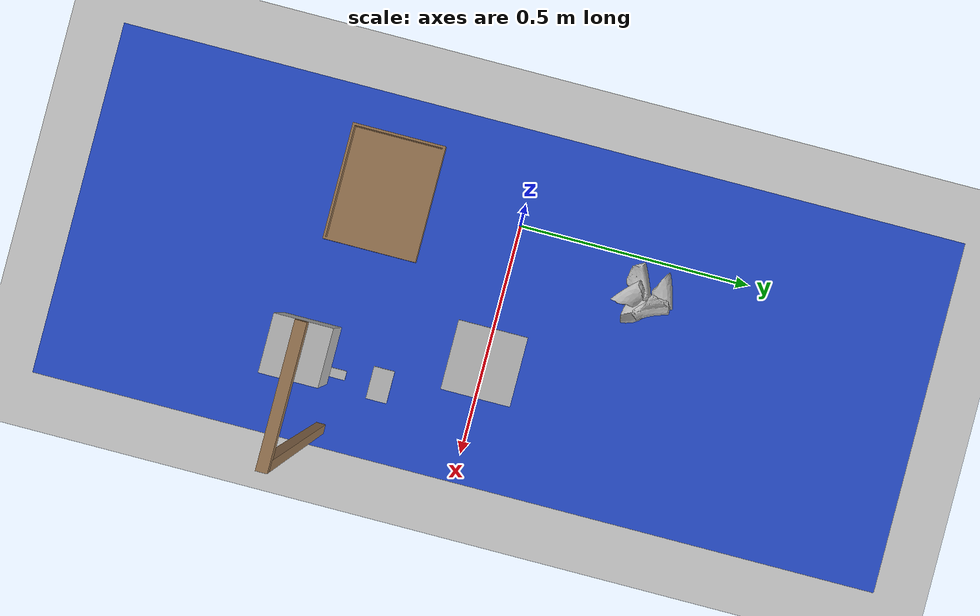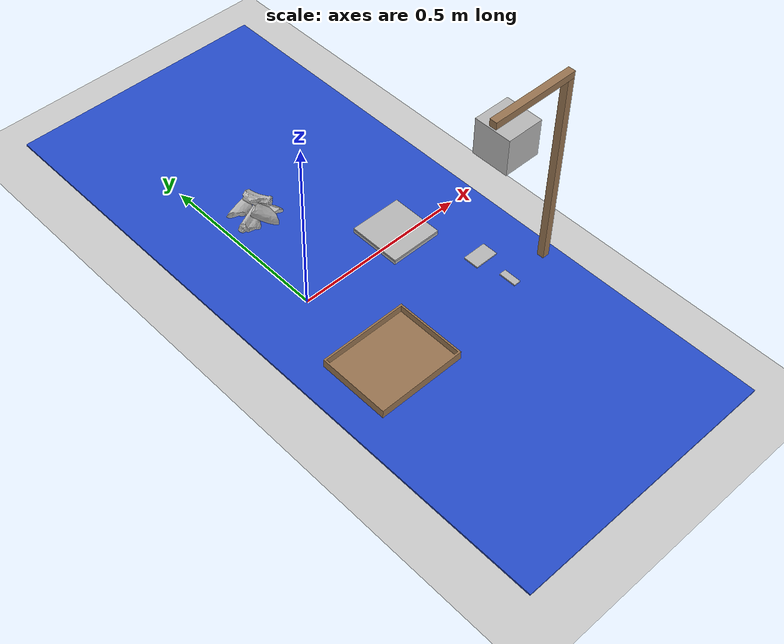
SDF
<sdf version="1.6">
 <world name="default">
  <light name="sun" type="directional">
   <cast_shadows>0</cast_shadows>
   <pose>0 0 10 0 -0 0</pose>
   <diffuse>0.8 0.8 0.8 1</diffuse>
   <specular>0.1 0.1 0.1 1</specular>
   <attenuation>
    <range>1000</range>
    <constant>0.9</constant>
    <linear>0.01</linear>
    <quadratic>0.001</quadratic>
   </attenuation>
   <direction>-0.5 0.5 -1</direction>
  </light>
  <model name="ground_plane">
   <static>1</static>
   <link name="link">
    <collision name="collision">
     <geometry><plane><normal>0 0 1</normal><size>100 100</size></plane></geometry>
     <surface><friction><ode><mu>100</mu><mu2>50</mu2></ode></friction></surface>
    </collision>
    <visual name="visual">
     <cast_shadows>0</cast_shadows>
     <geometry><plane><normal>0 0 1</normal><size>100 100</size></plane></geometry>
     <material>
      <script><uri>file://media/materials/scripts/gazebo.material</uri><name>Gazebo/Grey</name></script>
     </material>
    </visual>
   </link>
  </model>
  <gravity>0 0 -9.8</gravity>
  <magnetic_field>6e-06 2.3e-05 -4.2e-05</magnetic_field>
  <atmosphere type="adiabatic"/>
  <physics name="default_physics" default="0" type="ode">
   <max_step_size>0.001</max_step_size>
   <real_time_factor>1</real_time_factor>
   <real_time_update_rate>1000</real_time_update_rate>
  </physics>
  <scene><ambient>0.4 0.4 0.4 1</ambient><background>0.7 0.7 0.7 1</background><shadows>0</shadows></scene>
  <spherical_coordinates>
   <surface_model>EARTH_WGS84</surface_model>
   <latitude_deg>0</latitude_deg>
   <longitude_deg>0</longitude_deg>
   <elevation>0</elevation>
   <heading_deg>0</heading_deg>
  </spherical_coordinates>
  <model name="sherdmat">
   <pose>0.18 0 0.02 0 -0 0</pose>
   <static>1</static>
   <link name="mat_link">
    <pose>0 0 0.0025 0 -0 0</pose>
    <inertial>
     <mass>5</mass>
     <inertia><ixx>5</ixx><ixy>0</ixy><ixz>0</ixz><iyy>5</iyy><iyz>0</iyz><izz>5</izz></inertia>
    </inertial>
    <collision name="collision">
     <geometry><box><size>0.76 1.83 0.005</size></box></geometry>
     <surface>
      <friction>
       <torsional><coefficient>1</coefficient></torsional>
       <ode><mu>1</mu><mu2>1</mu2><fdir1>1 0 0</fdir1></ode>
      </friction>
     </surface>
    </collision>
    <visual name="visual">
     <material>
      <script><uri>file://media/materials/scripts/gazebo.material</uri><name>Gazebo/Blue</name></script>
     </material>
     <geometry><box><size>0.76 1.83 0.005</size></box></geometry>
    </visual>
   </link>
  </model>
  <model name="scale">
   <static>0</static>
   <link name="scale_base_link">
    <frame name="scale_base_frame"/>
    <pose>0 0 0.005 0 -0 0</pose>
    <inertial>
     <mass>1</mass>
     <inertia>
      <ixx>0.00188333</ixx>
      <ixy>0</ixy>
      <ixz>0</ixz>
      <iyy>0.00188333</iyy>
      <iyz>0</iyz>
      <izz>0.00375</izz>
     </inertia>
    </inertial>
    <visual name="scale_base_visual"><geometry><box><size>0.15 0.15 0.01</size></box></geometry></visual>
    <collision name="scale_base_collision">
     <max_contacts>20</max_contacts>
     <geometry><box><size>0.15 0.15 0.01</size></box></geometry>
    </collision>
   </link>
   <link name="scale_cover_link">
    <frame name="scale_cover_frame"/>
    <pose>0 0 0.0125 0 -0 0</pose>
    <inertial>
     <mass>0.1</mass>
     <inertia>
      <ixx>0.000188333</ixx>
      <ixy>0</ixy>
      <ixz>0</ixz>
      <iyy>0.000188333</iyy>
      <iyz>0</iyz>
      <izz>0.000375</izz>
     </inertia>
    </inertial>
    <visual name="visual_scale_cover"><geometry><box><size>0.15 0.15 0.005</size></box></geometry></visual>
    <collision name="scale_cover_link_collision">
     <max_contacts>20</max_contacts>
     <geometry><box><size>0.15 0.15 0.005</size></box></geometry>
     <surface>
      <friction>
       <torsional><coefficient>1</coefficient></torsional>
       <ode><mu>1</mu><mu2>1</mu2><fdir1>1 0 0</fdir1></ode>
      </friction>
     </surface>
    </collision>
    <sensor name="scale_contact_sensor" type="contact">
     <contact><collision>scale_cover_link_collision</collision><topic>__default_topic__</topic></contact>
     <pose>0 0 0.015 0 -0 0</pose>
     <update_rate>10</update_rate>
     <plugin name="scale_bumper" filename="libgazebo_ros_bumper.so">
      <bumperTopicName>scale_contact_sensor</bumperTopicName>
      <frameName>scale_cover_frame</frameName>
     </plugin>
    </sensor>
   </link>
   <joint name="scale_joint" type="fixed">
    <parent>scale_base_link</parent>
    <child>scale_cover_link</child>
    <pose frame="scale_base_frame">0 0 0.015 0 -0 0</pose>
    <sensor name="scale_ft_sensor" type="force_torque"><update_rate>10</update_rate></sensor>
   </joint>
   <plugin name="ft_sensor" filename="libgazebo_ros_ft_sensor.so">
    <updateRate>10</updateRate>
    <topicName>scale_ft_sensor</topicName>
    <jointName>scale_joint</jointName>
   </plugin>
   <pose>0.3 0 0.025 0 -0 0</pose>
  </model>
  <model name="overhead_camera">
   <static>1</static>
   <link name="vertical">
    <pose>0 0 0.3 0 -0 0</pose>
    <inertial>
     <mass>5</mass>
     <inertia><ixx>5</ixx><ixy>0</ixy><ixz>0</ixz><iyy>5</iyy><iyz>0</iyz><izz>5</izz></inertia>
    </inertial>
    <collision name="collision">
     <geometry><box><size>0.02 0.02 0.6</size></box></geometry>
     <surface>
      <contact>
       <poissons_ratio>0.15</poissons_ratio>
       <elastic_modulus>1</elastic_modulus>
       <ode><kp>100000</kp><kd>100</kd><max_vel>1</max_vel><min_depth>0.001</min_depth></ode>
      </contact>
      <friction>
       <torsional>
        <coefficient>1</coefficient>
        <use_patch_radius>0</use_patch_radius>
        <surface_radius>0.01</surface_radius>
       </torsional>
      </friction>
     </surface>
    </collision>
    <visual name="visual">
     <geometry><box><size>0.02 0.02 0.6</size></box></geometry>
     <material><ambient>0.4 0.26 0.12 1</ambient><diffuse>0.6 0.46 0.32 1</diffuse></material>
    </visual>
   </link>
   <link name="horizontal">
    <pose>0 0.115 0.605 -0 1.5707 1.5707</pose>
    <inertial>
     <mass>5</mass>
     <inertia><ixx>5</ixx><ixy>0</ixy><ixz>0</ixz><iyy>5</iyy><iyz>0</iyz><izz>5</izz></inertia>
    </inertial>
    <collision name="collision">
     <geometry><box><size>0.02 0.02 0.25</size></box></geometry>
     <surface>
      <contact>
       <poissons_ratio>0.15</poissons_ratio>
       <elastic_modulus>1</elastic_modulus>
       <ode><kp>100000</kp><kd>100</kd><max_vel>1</max_vel><min_depth>0.001</min_depth></ode>
      </contact>
      <friction>
       <torsional>
        <coefficient>1</coefficient>
        <use_patch_radius>0</use_patch_radius>
        <surface_radius>0.01</surface_radius>
       </torsional>
      </friction>
     </surface>
    </collision>
    <visual name="visual">
     <geometry><box><size>0.02 0.02 0.25</size></box></geometry>
     <material><ambient>0.4 0.26 0.12 1</ambient><diffuse>0.6 0.46 0.32 1</diffuse></material>
    </visual>
   </link>
   <link name="archival_camera::archival_camera_link">
    <inertial>
     <mass>0.1</mass>
     <inertia>
      <ixx>0.000166667</ixx>
      <iyy>0.000166667</iyy>
      <izz>0.000166667</izz>
      <ixy>0</ixy>
      <ixz>0</ixz>
      <iyz>0</iyz>
     </inertia>
    </inertial>
    <collision name="collision"><geometry><box><size>0.1 0.1 0.1</size></box></geometry></collision>
    <visual name="visual"><geometry><box><size>0.1 0.1 0.1</size></box></geometry></visual>
    <sensor name="camera" type="camera">
     <always_on>1</always_on>
     <update_rate>30</update_rate>
     <visualize>1</visualize>
     <camera name="__default__">
      <horizontal_fov>1.047</horizontal_fov>
      <image><width>3840</width><height>2160</height></image>
      <clip><near>0.1</near><far>100</far></clip>
     </camera>
     <plugin name="camera_controller" filename="libgazebo_ros_camera.so">
      <alwaysOn>true</alwaysOn>
      <updateRate>10</updateRate>
      <cameraName>archival_camera</cameraName>
      <imageTopicName>image_raw</imageTopicName>
      <cameraInfoTopicName>camera_info</cameraInfoTopicName>
      <frameName>archival_camera::archival_camera_link</frameName>
      <hackBaseline>0.07</hackBaseline>
      <distortionK1>0.0</distortionK1>
      <distortionK2>0.0</distortionK2>
      <distortionK3>0.0</distortionK3>
      <distortionT1>0.0</distortionT1>
      <distortionT2>0.0</distortionT2>
     </plugin>
    </sensor>
    <pose>0 0.19 0.54 -0 1.5707 1.5707</pose>
   </link>
   <pose>0.52 -0.3 0 0 -0 1.5708</pose>
  </model>
  <model name="color_board">
   <static>0</static>
   <link name="Board">
    <pose>0 0 0.0025 0 -0 0</pose>
    <inertial>
     <mass>2</mass>
     <inertia><ixx>5</ixx><ixy>0</ixy><ixz>0</ixz><iyy>5</iyy><iyz>0</iyz><izz>5</izz></inertia>
    </inertial>
    <collision name="Board">
     <geometry><box><size>0.07 0.045 0.005</size></box></geometry>
     <surface>
      <contact>
       <poissons_ratio>10</poissons_ratio>
       <elastic_modulus>8e+10</elastic_modulus>
       <ode><kp>100000</kp><kd>100</kd><max_vel>100</max_vel><min_depth>0.001</min_depth></ode>
      </contact>
      <friction>
       <torsional>
        <coefficient>1</coefficient>
        <use_patch_radius>0</use_patch_radius>
        <surface_radius>0.01</surface_radius>
       </torsional>
      </friction>
     </surface>
    </collision>
    <visual name="Board">
     <geometry><box><size>0.07 0.045 0.005</size></box></geometry>
     <material>
      <script>
       <uri>model://color_board/materials/scripts</uri>
       <uri>model://color_board/materials/texture</uri>
       <name>ColorBoard/Image</name>
      </script>
     </material>
    </visual>
   </link>
   <pose>0.4 -0.2 0.023951 0 -0 0</pose>
  </model>
  <model name="scale_bar">
   <static>0</static>
   <link name="Board">
    <pose>0 0 0.0025 0 -0 0</pose>
    <inertial>
     <mass>2</mass>
     <inertia><ixx>5</ixx><ixy>0</ixy><ixz>0</ixz><iyy>5</iyy><iyz>0</iyz><izz>5</izz></inertia>
    </inertial>
    <collision name="Board">
     <geometry><box><size>0.02 0.05 0.005</size></box></geometry>
     <surface>
      <contact>
       <poissons_ratio>10</poissons_ratio>
       <elastic_modulus>8e+10</elastic_modulus>
       <ode><kp>100000</kp><kd>100</kd><max_vel>100</max_vel><min_depth>0.001</min_depth></ode>
      </contact>
      <friction>
       <torsional>
        <coefficient>1</coefficient>
        <use_patch_radius>0</use_patch_radius>
        <surface_radius>0.01</surface_radius>
       </torsional>
      </friction>
     </surface>
    </collision>
    <visual name="Board">
     <geometry><box><size>0.02 0.05 0.005</size></box></geometry>
     <material>
      <script>
       <uri>model://scale_bar/materials/scripts</uri>
       <uri>model://scale_bar/materials/texture</uri>
       <name>BlackWhite/Image</name>
      </script>
     </material>
    </visual>
   </link>
   <pose>0.4 -0.3 0.023951 0 -0 0</pose>
  </model>
  <model name="discard_box">
   <pose>0 -0.3 -0.001392 -1e-06 0 0</pose>
   <link name="link">
    <pose>0 0 0.031 0 -0 0</pose>
    <inertial>
     <mass>5</mass>
     <inertia><ixx>5</ixx><ixy>0</ixy><ixz>0</ixz><iyy>5</iyy><iyz>0</iyz><izz>5</izz></inertia>
    </inertial>
    <collision name="collision">
     <geometry><mesh><uri>model://discard_box/meshes/discard_box.dae</uri></mesh></geometry>
    </collision>
    <visual name="visual">
     <geometry><mesh><uri>model://discard_box/meshes/discard_box.dae</uri></mesh></geometry>
     <material><ambient>0.4 0.26 0.12 1</ambient><diffuse>0.6 0.46 0.32 1</diffuse></material>
    </visual>
   </link>
  </model>
  <model name="sherd1">
   <pose>0.113423 0.276612 0.034057 -1.58479 0.327282 0.979486</pose>
   <static>0</static>
   <link name="sherd_a_link">
    <pose>0 0 0.005 0 -0 0</pose>
    <inertial>
     <mass>0.162</mass>
     <inertia>
      <ixx>5.56464e-05</ixx>
      <ixy>4.57824e-06</ixy>
      <ixz>-8.30457e-06</ixz>
      <iyy>7.60092e-05</iyy>
      <iyz>2.67802e-06</iyz>
      <izz>2.97954e-05</izz>
     </inertia>
    </inertial>
    <collision name="collision">
     <geometry><mesh><uri>model://sherd_a/meshes/sherd_a.stl</uri><scale>1 1 1</scale></mesh></geometry>
     <surface>
      <contact>
       <poissons_ratio>0.15</poissons_ratio>
       <elastic_modulus>8e+10</elastic_modulus>
       <ode><kp>100000</kp><kd>100</kd><max_vel>100</max_vel><min_depth>0.001</min_depth></ode>
      </contact>
      <friction>
       <torsional><coefficient>1</coefficient></torsional>
       <ode><mu>1</mu><mu2>1</mu2><fdir1>1 0 0</fdir1></ode>
      </friction>
     </surface>
    </collision>
    <visual name="visual">
     <geometry><mesh><uri>model://sherd_a/meshes/sherd_a.stl</uri><scale>1 1 1</scale></mesh></geometry>
     <material>
      <script>
       <uri>model://sherd_a/materials/scripts</uri>
       <uri>model://sherd_a/materials/textures</uri>
       <name>sherdMat/a</name>
      </script>
     </material>
    </visual>
   </link>
  </model>
  <model name="sherd2">
   <pose>0.050251 0.27459 0.035342 -0.303604 0.088561 -2.77978</pose>
   <static>0</static>
   <link name="sherd_b_link">
    <pose>0 0 0.005 0 -0 0</pose>
    <inertial>
     <mass>0.266</mass>
     <inertia>
      <ixx>4.06209e-05</ixx>
      <ixy>-7.59926e-06</ixy>
      <ixz>-1.13008e-06</ixz>
      <iyy>0.000120276</iyy>
      <iyz>-3.01434e-06</iyz>
      <izz>0.000130088</izz>
     </inertia>
    </inertial>
    <collision name="collision">
     <geometry><mesh><uri>model://sherd_b/meshes/sherd_b.stl</uri><scale>1 1 1</scale></mesh></geometry>
     <surface>
      <contact>
       <poissons_ratio>0.15</poissons_ratio>
       <elastic_modulus>8e+10</elastic_modulus>
       <ode><kp>100000</kp><kd>100</kd><max_vel>100</max_vel><min_depth>0.001</min_depth></ode>
      </contact>
      <friction>
       <torsional><coefficient>1</coefficient></torsional>
       <ode><mu>1</mu><mu2>1</mu2><fdir1>1 0 0</fdir1></ode>
      </friction>
     </surface>
    </collision>
    <visual name="visual">
     <geometry><mesh><uri>model://sherd_b/meshes/sherd_b.stl</uri><scale>1 1 1</scale></mesh></geometry>
     <material>
      <script>
       <uri>model://sherd_b/materials/scripts</uri>
       <uri>model://sherd_b/materials/textures</uri>
       <name>sherdMat/b</name>
      </script>
     </material>
    </visual>
   </link>
  </model>
  <model name="sherd3">
   <pose>0.096719 0.306068 0.055245 0.687165 0.022507 1.98568</pose>
   <static>0</static>
   <link name="sherd_b_link">
    <pose>0 0 0.005 0 -0 0</pose>
    <inertial>
     <mass>0.266</mass>
     <inertia>
      <ixx>4.06209e-05</ixx>
      <ixy>-7.59926e-06</ixy>
      <ixz>-1.13008e-06</ixz>
      <iyy>0.000120276</iyy>
      <iyz>-3.01434e-06</iyz>
      <izz>0.000130088</izz>
     </inertia>
    </inertial>
    <collision name="collision">
     <geometry><mesh><uri>model://sherd_b/meshes/sherd_b.stl</uri><scale>1 1 1</scale></mesh></geometry>
     <surface>
      <contact>
       <poissons_ratio>0.15</poissons_ratio>
       <elastic_modulus>8e+10</elastic_modulus>
       <ode><kp>100000</kp><kd>100</kd><max_vel>100</max_vel><min_depth>0.001</min_depth></ode>
      </contact>
      <friction>
       <torsional><coefficient>1</coefficient></torsional>
       <ode><mu>1</mu><mu2>1</mu2><fdir1>1 0 0</fdir1></ode>
      </friction>
     </surface>
    </collision>
    <visual name="visual">
     <geometry><mesh><uri>model://sherd_b/meshes/sherd_b.stl</uri><scale>1 1 1</scale></mesh></geometry>
     <material>
      <script>
       <uri>model://sherd_b/materials/scripts</uri>
       <uri>model://sherd_b/materials/textures</uri>
       <name>sherdMat/b</name>
      </script>
     </material>
    </visual>
   </link>
  </model>
  <model name="sherd4">
   <pose>0.087792 0.259989 0.052219 -1.2482 -1.07683 2.00662</pose>
   <static>0</static>
   <link name="sherd_c_link">
    <pose>0 0 0.005 0 -0 0</pose>
    <inertial>
     <mass>0.05</mass>
     <inertia>
      <ixx>5.14501e-06</ixx>
      <ixy>-3.15856e-06</ixy>
      <ixz>9.0582e-08</ixz>
      <iyy>7.94435e-06</iyy>
      <iyz>-7.7021e-07</iyz>
      <izz>9.12318e-06</izz>
     </inertia>
    </inertial>
    <collision name="collision">
     <geometry><mesh><uri>model://sherd_c/meshes/sherd_c.stl</uri><scale>2 2 2</scale></mesh></geometry>
     <surface>
      <contact>
       <poissons_ratio>0.15</poissons_ratio>
       <elastic_modulus>8e+10</elastic_modulus>
       <ode><kp>100000</kp><kd>100</kd><max_vel>100</max_vel><min_depth>0.001</min_depth></ode>
      </contact>
      <friction>
       <torsional><coefficient>1</coefficient></torsional>
       <ode><mu>1</mu><mu2>1</mu2><fdir1>1 0 0</fdir1></ode>
      </friction>
     </surface>
    </collision>
    <visual name="visual">
     <geometry><mesh><uri>model://sherd_c/meshes/sherd_c.stl</uri><scale>2 2 2</scale></mesh></geometry>
     <material>
      <script>
       <uri>model://sherd_c/materials/scripts</uri>
       <uri>model://sherd_c/materials/textures</uri>
       <name>sherdMat/c</name>
      </script>
     </material>
    </visual>
   </link>
  </model>
  <model name="sherd5">
   <pose>0.063329 0.323619 0.032953 -1.05594 -0.459477 -0.136006</pose>
   <static>0</static>
   <link name="sherd_c_link">
    <pose>0 0 0.005 0 -0 0</pose>
    <inertial>
     <mass>0.05</mass>
     <inertia>
      <ixx>5.14501e-06</ixx>
      <ixy>-3.15856e-06</ixy>
      <ixz>9.0582e-08</ixz>
      <iyy>7.94435e-06</iyy>
      <iyz>-7.7021e-07</iyz>
      <izz>9.12318e-06</izz>
     </inertia>
    </inertial>
    <collision name="collision">
     <geometry><mesh><uri>model://sherd_c/meshes/sherd_c.stl</uri><scale>2 2 2</scale></mesh></geometry>
     <surface>
      <contact>
       <poissons_ratio>0.15</poissons_ratio>
       <elastic_modulus>8e+10</elastic_modulus>
       <ode><kp>100000</kp><kd>100</kd><max_vel>100</max_vel><min_depth>0.001</min_depth></ode>
      </contact>
      <friction>
       <torsional><coefficient>1</coefficient></torsional>
       <ode><mu>1</mu><mu2>1</mu2><fdir1>1 0 0</fdir1></ode>
      </friction>
     </surface>
    </collision>
    <visual name="visual">
     <geometry><mesh><uri>model://sherd_c/meshes/sherd_c.stl</uri><scale>2 2 2</scale></mesh></geometry>
     <material>
      <script>
       <uri>model://sherd_c/materials/scripts</uri>
       <uri>model://sherd_c/materials/textures</uri>
       <name>sherdMat/c</name>
      </script>
     </material>
    </visual>
   </link>
  </model>
 </world>
</sdf>
